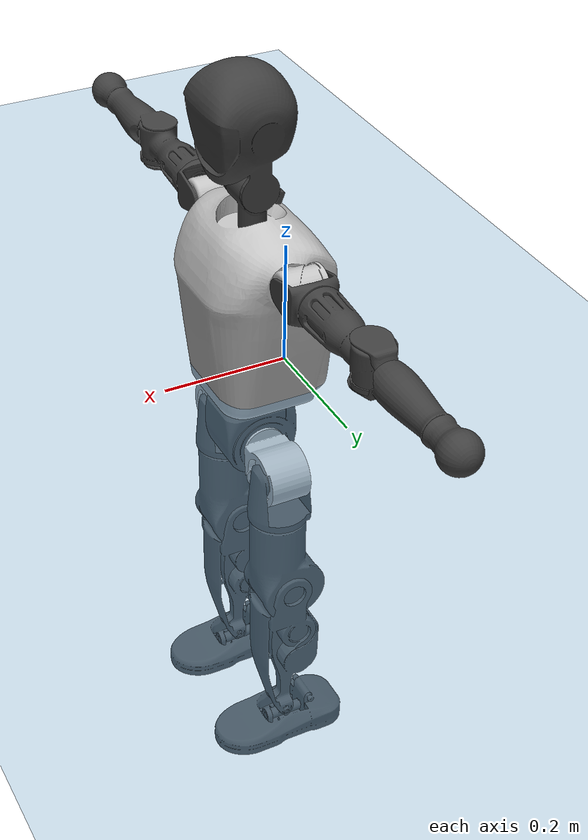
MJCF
<mujoco model="T1">
  <compiler angle="radian" assetdir="assets" balanceinertia="true" inertiafromgeom="false"/>

  <option timestep="0.005" density="1.2" viscosity="2e-05"/>

  <size nkey="1"/>

  <visual>
    <quality shadowsize="8192"/>
    <map shadowclip="0.5"/>
  </visual>

  <default>
    <default class="/">
      <joint armature="0.01" damping="0.01" frictionloss="0.1"/>
      <geom contype="0" conaffinity="0" group="1" solref="-1000 -80"/>
      <site size="0.01 0.005 0.005" group="5"/>
      <general forcelimited="true" biastype="affine" gainprm="25" biasprm="0 -25 -0.6"/>
      <default class="t1">
        <geom rgba="0.25 0.25 0.25 1"/>
        <default class="visual">
          <geom type="mesh" group="2"/>
        </default>
        <default class="collision">
          <geom group="3"/>
        </default>
        <default class="foot">
          <geom size="0.1115 0.05 0.015" type="box" condim="6" group="4" priority="1" solimp="0.015 1 0.015"/>
        </default>
        <default class="reward_collision_sphere">
          <geom group="5" rgba="1 0 0 1"/>
        </default>
      </default>
    </default>
  </default>

  <asset>
    <texture type="skybox" colorspace="auto" name="//unnamed_texture_0" builtin="gradient" rgb1="0.95 0.95 0.95" rgb2="0.95 0.95 0.95" width="100" height="600"/>
    <texture type="2d" colorspace="auto" name="texplane" builtin="checker" rgb1="0.345 0.575 0.748" rgb2="0.345 0.575 0.748" markrgb="1 1 1" width="512" height="512"/>
    <material name="MatPlane" class="/" texture="texplane" texuniform="true" texrepeat="2 2" specular="0.9"/>
    <mesh name="Trunk" class="/" file="Trunk.stl"/>
    <mesh name="H1" class="/" file="H1.stl"/>
    <mesh name="H2" class="/" file="H2.stl"/>
    <mesh name="AL1" class="/" file="AL1.stl"/>
    <mesh name="AL2" class="/" file="AL2.stl"/>
    <mesh name="AL3" class="/" file="AL3.stl"/>
    <mesh name="left_hand_link" class="/" file="left_hand_link.stl"/>
    <mesh name="AR1" class="/" file="AR1.stl"/>
    <mesh name="AR2" class="/" file="AR2.stl"/>
    <mesh name="AR3" class="/" file="AR3.stl"/>
    <mesh name="right_hand_link" class="/" file="right_hand_link.stl"/>
    <mesh name="Waist" class="/" file="Waist.stl"/>
    <mesh name="Hip_Pitch_Left" class="/" file="Hip_Pitch_Left.stl"/>
    <mesh name="Hip_Roll_Left" class="/" file="Hip_Roll_Left.stl"/>
    <mesh name="Hip_Yaw_Left" class="/" file="Hip_Yaw_Left.stl"/>
    <mesh name="Shank_Left" class="/" file="Shank_Left.stl"/>
    <mesh name="Ankle_Cross_Left" class="/" file="Ankle_Cross_Left.stl"/>
    <mesh name="left_foot_link" class="/" file="left_foot_link.stl"/>
    <mesh name="Hip_Pitch_Right" class="/" file="Hip_Pitch_Right.stl"/>
    <mesh name="Hip_Roll_Right" class="/" file="Hip_Roll_Right.stl"/>
    <mesh name="Hip_Yaw_Right" class="/" file="Hip_Yaw_Right.stl"/>
    <mesh name="Shank_Right" class="/" file="Shank_Right.stl"/>
    <mesh name="Ankle_Cross_Right" class="/" file="Ankle_Cross_Right.stl"/>
    <mesh name="right_foot_link" class="/" file="right_foot_link.stl"/>
  </asset>

  <worldbody>
    <geom name="floor" class="/" size="100 100 0.125" type="plane" group="0" material="MatPlane"/>
    <light name="toplight_shadow" class="/" pos="0 0 5" dir="0.0990148 0.0990148 -0.990148" type="directional" ambient="0.04 0.04 0.04" diffuse="0.55 0.55 0.55" specular="0.12 0.12 0.12"/>
    <light name="toplight_fill" class="/" pos="0 0 5" dir="0.0990148 0.0990148 -0.990148" type="directional" castshadow="false" ambient="0.04 0.04 0.04" diffuse="0.3 0.3 0.3" specular="0.08 0.08 0.08"/>
    <body name="trunk" childclass="t1" pos="-3.79115e-05 0.000839645 0.000321373" quat="1 -0.000138543 -2.1258e-06 -4.09452e-05">
      <inertial pos="0.0501335 0.000266581 0.108902" quat="0.999953 0.00119981 -0.00955308 -0.000895002" mass="10.5017" diaginertia="0.0586146 0.0603984 0.066961"/>
      <joint name="//unnamed_joint_0" type="free" armature="0" damping="0" frictionloss="0"/>
      <geom name="//unnamed_geom_1" class="visual" rgba="0.76 0.76 0.76 1" mesh="Trunk"/>
      <geom name="//unnamed_geom_2" class="collision" size="0.0723056 0.0964075 0.144611" pos="0.0543993 0 0.12404" type="box"/>
      <geom name="//unnamed_geom_3" class="reward_collision_sphere" size="0.110869" pos="0.0543993 0 0.103366"/>
      <geom name="//unnamed_geom_4" class="reward_collision_sphere" size="0.0144611" pos="0.0543993 0.0809119 0"/>
      <geom name="//unnamed_geom_5" class="reward_collision_sphere" size="0.0144611" pos="0.0543993 -0.0809119 0"/>
      <geom name="//unnamed_geom_6" class="reward_collision_sphere" size="0.0144611" pos="0.0543993 0.101854 0.18606"/>
      <geom name="//unnamed_geom_7" class="reward_collision_sphere" size="0.0144611" pos="0.0543993 -0.101854 0.18606"/>
      <site name="imu" pos="0.000610131 0.000238918 -0.000231211" size="0.00964075"/>
      <camera name="track" pos="0 -1.90381 0" quat="0.707107 0.707107 0 0" mode="trackcom"/>
      <camera name="ego_camera" pos="0.110612 0 0.434139" quat="-0.5 -0.5 0.5 0.5"/>
      <body name="H1" pos="0.0552014 -0.000169373 0.249372" quat="1 -6.84617e-06 1.20864e-07 -3.77052e-05">
        <inertial pos="-0.00133531 -0.00196101 0.0593106" quat="0.76303 -0.013767 0.0019373 0.646213" mass="0.401306" diaginertia="0.000149272 0.000173565 0.000177804"/>
        <joint name="AAHead_yaw" pos="0 0 0" axis="-0.00120356 0.000162487 0.999999" range="-1.56764 1.57081" armature="0.0103813" damping="0.0126796" frictionloss="0.102844"/>
        <geom name="//unnamed_geom_8" class="visual" mesh="H1"/>
        <body name="H2" pos="0.000555385 -0.00243369 0.0644368" quat="1 -0.000486148 0.000100893 -3.16599e-05">
          <inertial pos="0.00689518 -0.000373939 0.0999991" quat="0.988914 0.102901 -0.0746458 -0.0767375" mass="0.560254" diaginertia="0.00125936 0.00147171 0.00204381"/>
          <joint name="Head_pitch" pos="0 0 0" axis="0.00398158 -0.999991 0.00172895" stiffness="3.43397e-05" range="-1.21407 0.356721" armature="0.00937155" damping="0" frictionloss="0.0987848"/>
          <geom name="//unnamed_geom_9" class="visual" mesh="H2"/>
          <geom name="//unnamed_geom_10" class="collision" size="0.077126" pos="0.00906656 0 0.113703"/>
          <geom name="//unnamed_geom_11" class="reward_collision_sphere" size="0.0867667" pos="0.0181331 0 0.103366"/>
        </body>
      </body>
      <body name="AL1" pos="0.0530977 0.101849 0.225021" quat="1 -0.000461138 -0.000336488 -0.000344689">
        <inertial pos="-0.000541166 0.0429545 -0.000209972" quat="0.504237 0.49583 -0.504187 0.495674" mass="0.479826" diaginertia="0.000845796 0.000997844 0.000344529"/>
        <joint name="Left_Shoulder_Pitch" pos="0 0 0" axis="-0.00219582 0.999991 0.00354745" stiffness="0.00188381" range="-3.29431 1.25644" armature="0.00962914" damping="0" frictionloss="0.0926074"/>
        <geom name="//unnamed_geom_12" class="visual" rgba="0.76 0.76 0.76 1" mesh="AL1"/>
        <body name="AL2" pos="-1.38651e-05 0.0441597 -0.000612672" quat="1 -1.16593e-05 -0.000107896 0.000106921">
          <inertial pos="0.00433939 0.0374801 0.000557864" quat="0.488709 0.512624 -0.487699 0.510422" mass="0.141696" diaginertia="0.00024365 0.00026821 0.000209111"/>
          <joint name="Left_Shoulder_Roll" pos="0 0 0" axis="-0.999998 -0.00195364 0.000756837" range="-1.5898 1.73774" armature="0.0104537" damping="0.00717945" frictionloss="0.0958963"/>
          <geom name="//unnamed_geom_13" class="visual" mesh="AL2"/>
          <body name="AL3" pos="-6.33147e-05 0.0583042 -0.000451812" quat="1 -3.94816e-05 -4.88969e-05 0.000288143">
            <inertial pos="0.000761521 0.0796341 -0.00110145" quat="0.704801 0.709401 -0.000154195 -0.00241177" mass="0.891878" diaginertia="0.00792336 0.00993356 0.000724856"/>
            <joint name="Left_Elbow_Pitch" pos="0 0 0" axis="0.00475509 -0.999988 -0.00115323" stiffness="0.00200693" range="-2.31036 2.28959" armature="0.0107194" damping="0.00831326" frictionloss="0.0973301"/>
            <geom name="//unnamed_geom_14" class="visual" mesh="AL3"/>
            <geom name="//unnamed_geom_15" class="collision" size="0.0289222 0.0723056" pos="0 0.0475952 0" quat="0.707105 0.707108 0 0" type="cylinder"/>
            <geom name="//unnamed_geom_16" class="reward_collision_sphere" size="0.0347067"/>
            <body name="left_hand_link" pos="0.000929053 0.140423 0.000807365" quat="1 0.000628494 -0.000126345 -0.000541358">
              <inertial pos="-0.00179849 0.103395 0.000118839" quat="0.706933 0.707279 -3.42743e-05 0.00103231" mass="0.294504" diaginertia="0.00493191 0.00628786 0.000258236"/>
              <joint name="Left_Elbow_Yaw" pos="0 0 0" axis="0.00098909 0.00281105 0.999996" stiffness="0.000486942" range="-2.44384 -0.0355829" armature="0.00943232" damping="0.00826141" frictionloss="0.0947973"/>
              <geom name="//unnamed_geom_17" class="visual" mesh="left_hand_link"/>
              <geom name="//unnamed_geom_18" class="collision" size="0.0289222 0.0843566" pos="0 0.123748 0" quat="0.707105 0.707108 0 0" type="cylinder"/>
              <geom name="//unnamed_geom_19" class="reward_collision_sphere" size="0.0482037"/>
              <geom name="//unnamed_geom_20" class="reward_collision_sphere" size="0.0337426" pos="0 0.104709 0"/>
              <geom name="//unnamed_geom_21" class="reward_collision_sphere" size="0.0337426" pos="0 0.204659 0"/>
            </body>
          </body>
        </body>
      </body>
      <body name="AR1" pos="0.0506953 -0.101416 0.225936" quat="1 6.05538e-05 -0.000112174 0.000121731">
        <inertial pos="-0.000670591 -0.0452418 3.91238e-05" quat="0.503186 0.497602 -0.503542 0.495622" mass="0.464533" diaginertia="0.00083683 0.000996542 0.000336991"/>
        <joint name="Right_Shoulder_Pitch" pos="0 0 0" axis="-0.00656263 -0.999965 -0.00509272" range="-1.23012 3.32555" armature="0.0101356" damping="0.0130745" frictionloss="0.100834"/>
        <geom name="//unnamed_geom_22" class="visual" rgba="0.76 0.76 0.76 1" mesh="AR1"/>
        <body name="AR2" pos="0.00126839 -0.043807 0.000538109" quat="1 0.000387033 0.000600366 0.00045876">
          <inertial pos="0.00383193 -0.035794 0.000913789" quat="0.5104 0.49071 -0.513624 0.48465" mass="0.140692" diaginertia="0.000245503 0.00027437 0.000208816"/>
          <joint name="Right_Shoulder_Roll" pos="0 0 0" axis="-0.999974 0.00266613 -0.00668205" range="-1.75976 1.55185" armature="0.00962321" damping="0.00335623" frictionloss="0.106683"/>
          <geom name="//unnamed_geom_23" class="visual" mesh="AR2"/>
          <body name="AR3" pos="-0.000819199 -0.058912 -0.00231207" quat="1 2.80494e-05 -1.46906e-05 4.25916e-05">
            <inertial pos="-0.000189761 -0.0827447 0.00100807" quat="0.70807 0.706121 0.00236757 0.00491183" mass="0.915204" diaginertia="0.0079049 0.0100652 0.000744636"/>
            <joint name="Right_Elbow_Pitch" pos="0 0 0" axis="0.00174115 0.999987 0.00488136" range="-2.29503 2.2794" armature="0.0088956" damping="0.0102852" frictionloss="0.095213"/>
            <geom name="//unnamed_geom_24" class="visual" mesh="AR3"/>
            <geom name="//unnamed_geom_25" class="collision" size="0.0289222 0.0723056" pos="0 -0.0475952 0" quat="0.707105 0.707108 0 0" type="cylinder"/>
            <geom name="//unnamed_geom_26" class="reward_collision_sphere" size="0.0347067"/>
            <body name="right_hand_link" pos="-0.000337208 -0.139835 1.62707e-05" quat="1 -8.86373e-05 -0.00012456 -0.000176978">
              <inertial pos="-6.20863e-05 -0.103185 0.00261513" quat="0.706435 0.707778 0.00012601 0.000326867" mass="0.295512" diaginertia="0.00502321 0.00645428 0.000256638"/>
              <joint name="Right_Elbow_Yaw" pos="0 0 0" axis="0.00328924 0.00262231 0.999991" stiffness="0.00097688" range="-0.00201545 2.43275" armature="0.0102426" damping="0" frictionloss="0.0975117"/>
              <geom name="//unnamed_geom_27" class="visual" mesh="right_hand_link"/>
              <geom name="//unnamed_geom_28" class="collision" size="0.0289222 0.0843566" pos="0 -0.123748 0" quat="0.707105 0.707108 0 0" type="cylinder"/>
              <geom name="//unnamed_geom_29" class="reward_collision_sphere" size="0.0482037"/>
              <geom name="//unnamed_geom_30" class="reward_collision_sphere" size="0.0337426" pos="0 -0.104709 0"/>
              <geom name="//unnamed_geom_31" class="reward_collision_sphere" size="0.0337426" pos="0 -0.204659 0"/>
            </body>
          </body>
        </body>
      </body>
      <body name="Waist" pos="0.0573282 -0.00205168 -0.117241" quat="1 0.000134062 -0.000434448 8.93626e-05">
        <inertial pos="0.000902469 -0.000165342 0.00787735" quat="0.98333 0.00330925 -0.181785 -0.00211572" mass="2.25019" diaginertia="0.00322078 0.00401261 0.00543919"/>
        <joint name="Waist" pos="0 0 0" axis="0.00691275 -0.000902356 0.999976" range="-1.56678 1.54543" armature="0.00960497" damping="0.0100351" frictionloss="0.101661"/>
        <geom name="//unnamed_geom_32" class="visual" mesh="Waist"/>
        <body name="Hip_Pitch_Left" pos="0.00169798 0.100363 -0.000189685" quat="1 -0.000383204 0.000447338 0.000274449">
          <inertial pos="0.000625414 -0.00653818 -0.0190129" quat="0.975054 0.221443 0.0152473 0.00107239" mass="0.90831" diaginertia="0.00111051 0.00116754 0.00146752"/>
          <joint name="Left_Hip_Pitch" pos="0 0 0" axis="-0.00309721 0.999917 0.0124884" range="-1.79361 1.60673" armature="0.00932208" damping="0.00383922" frictionloss="0.0976243"/>
          <geom name="//unnamed_geom_33" class="visual" rgba="0.76 0.76 0.76 1" mesh="Hip_Pitch_Left"/>
          <body name="Hip_Roll_Left" pos="0.00117462 0.00206829 -0.0203767" quat="0.999999 -0.00089818 0.000855037 1.92003e-05">
            <inertial pos="0.000493221 -0.000141759 -0.0553349" quat="0.706556 -0.00720418 -0.00213969 0.707617" mass="0.336927" diaginertia="0.00106006 0.00115778 0.000593159"/>
            <joint name="Left_Hip_Roll" pos="0 0 0" axis="-0.999976 -0.0066875 0.00179329" range="-1.58841 0.210208" armature="0.0100776" damping="0.00851861" frictionloss="0.0960456"/>
            <geom name="//unnamed_geom_34" class="visual" mesh="Hip_Roll_Left"/>
            <geom name="//unnamed_geom_35" class="reward_collision_sphere" size="0.0530241"/>
            <body name="Hip_Yaw_Left" pos="-0.000119429 6.5881e-05 -0.0841827" quat="1 -0.00021125 6.67871e-05 0.000128732">
              <inertial pos="-0.00583253 -0.000863984 -0.0920813" quat="0.692344 -0.0380335 -0.0271809 0.720052" mass="1.93091" diaginertia="0.0156219 0.0193347 0.0030034"/>
              <joint name="Left_Hip_Yaw" pos="0 0 0" axis="0.000409726 -0.000307371 -1" stiffness="0.00062326" range="-1.01372 1.01097" armature="0.00963907" damping="0.00476878" frictionloss="0.0986737"/>
              <geom name="//unnamed_geom_36" class="visual" mesh="Hip_Yaw_Left"/>
              <geom name="//unnamed_geom_37" class="collision" size="0.0482037 0.077126" type="cylinder"/>
              <body name="Shank_Left" pos="-0.0109191 -0.000906812 -0.138078" quat="1 -0.000157477 0.000267364 0.00015851">
                <inertial pos="-0.00451454 2.24075e-05 -0.129033" quat="0.997675 -0.00158199 -0.0253416 0.0632395" mass="1.52829" diaginertia="0.0211241 0.026942 0.00213952"/>
                <joint name="Left_Knee_Pitch" pos="0 0 0" axis="-0.00449003 0.999986 0.00269805" range="-0.0184293 2.35675" armature="0.0102848" damping="0.00661126" frictionloss="0.0981873"/>
                <geom name="//unnamed_geom_38" class="visual" mesh="Shank_Left"/>
                <geom name="//unnamed_geom_39" class="collision" size="0.0482037 0.0723056" pos="0 0 -0.12404" type="cylinder"/>
                <geom name="//unnamed_geom_40" class="reward_collision_sphere" size="0.0626649"/>
                <body name="Ankle_Cross_Left" pos="-0.000260633 0.000312197 -0.290444" quat="1 0.000284899 0.00021623 0.000647713">
                  <inertial pos="-0.00228135 -0.0018252 -0.00879223" quat="0.441909 0.551571 0.552046 0.442415" mass="0.0654623" diaginertia="1.78659e-05 2.0349e-05 1.34153e-05"/>
                  <joint name="Left_Ankle_Pitch" pos="0 0 0" axis="0.000261426 1 0.000892634" stiffness="0.00257907" range="-0.864244 0.333818" armature="0.0102181" damping="0.00840749" frictionloss="0.0986389"/>
                  <geom name="//unnamed_geom_41" class="visual" mesh="Ankle_Cross_Left"/>
                  <body name="left_foot_link" pos="-0.00107457 -0.00172103 -0.0120603" quat="1 -6.94243e-05 -0.000103326 -8.46962e-05">
                    <inertial pos="0.00103015 -0.000393535 -0.00732286" quat="-0.00130129 0.620415 -0.0013825 0.784271" mass="0.619988" diaginertia="0.00166174 0.00187737 0.00262358"/>
                    <joint name="Left_Ankle_Roll" pos="0 0 0" axis="-0.999998 0.00175761 -0.00132176" range="-0.435018 0.440142" armature="0.00898291" damping="0.0124488" frictionloss="0.0978143"/>
                    <geom name="//unnamed_geom_42" class="visual" mesh="left_foot_link"/>
                    <geom name="left_foot" class="foot" size="0.112232 0.0485939 0.0141737" pos="0.00906656 0 -0.015505"/>
                    <geom name="//unnamed_geom_44" class="reward_collision_sphere" size="0.0501319" pos="0.00906656 0 -0.015505"/>
                    <geom name="//unnamed_geom_45" class="reward_collision_sphere" size="0.0289222" pos="0.0861323 -0.0218938 -0.015505"/>
                    <geom name="//unnamed_geom_46" class="reward_collision_sphere" size="0.0289222" pos="-0.0634659 -0.0218938 -0.015505"/>
                    <site name="left_foot" class="foot" pos="0.00906656 0 -0.015505" size="0.00964075"/>
                  </body>
                </body>
              </body>
            </body>
          </body>
        </body>
        <body name="Hip_Pitch_Right" pos="-0.00125173 -0.102074 0.000110081" quat="0.999999 0.000867902 0.000971155 -9.93204e-06">
          <inertial pos="0.000143927 0.00492485 -0.0186132" quat="0.972879 -0.230758 0.015315 -0.00467522" mass="0.89218" diaginertia="0.0010844 0.00112245 0.00146045"/>
          <joint name="Right_Hip_Pitch" pos="0 0 0" axis="0.00261443 -0.999996 -0.000740492" range="-1.57394 1.80685" armature="0.0100783" damping="0.0109398" frictionloss="0.105276"/>
          <geom name="//unnamed_geom_47" class="visual" rgba="0.76 0.76 0.76 1" mesh="Hip_Pitch_Right"/>
          <body name="Hip_Roll_Right" pos="-0.000393586 0.0015303 -0.0192335" quat="1 -0.000239627 6.57713e-05 -0.000113488">
            <inertial pos="-0.00036098 0.00182483 -0.0572765" quat="0.709187 -0.00984886 -0.006058 0.704925" mass="0.338994" diaginertia="0.00105457 0.00117167 0.000601138"/>
            <joint name="Right_Hip_Roll" pos="0 0 0" axis="-0.999999 0.00091549 -0.00071197" range="-0.207352 1.56947" armature="0.00918237" damping="0.0106802" frictionloss="0.0989011"/>
            <geom name="//unnamed_geom_48" class="visual" mesh="Hip_Roll_Right"/>
            <geom name="//unnamed_geom_49" class="reward_collision_sphere" size="0.0530241"/>
            <body name="Hip_Yaw_Right" pos="-0.000155988 1.48596e-05 -0.0835727" quat="1 4.90771e-05 0.000157986 0.000372049">
              <inertial pos="-0.00660166 -0.000131442 -0.0927699" quat="0.71412 -0.0312954 -0.0337079 0.69851" mass="1.90611" diaginertia="0.0157981 0.0196094 0.00309631"/>
              <joint name="Right_Hip_Yaw" pos="0 0 0" axis="0.00253132 0.00230582 -0.999994" stiffness="0.00299663" range="-0.999274 0.985607" armature="0.00858883" damping="0.0125388" frictionloss="0.104093"/>
              <geom name="//unnamed_geom_50" class="visual" mesh="Hip_Yaw_Right"/>
              <geom name="//unnamed_geom_51" class="collision" size="0.0482037 0.077126" type="cylinder"/>
              <body name="Shank_Right" pos="-0.0138975 0.00111499 -0.138557" quat="1 -0.000117343 -0.000712011 0.000298426">
                <inertial pos="-0.00561882 0.000259588 -0.124993" quat="0.999258 0.000205252 -0.023886 -0.0302164" mass="1.59178" diaginertia="0.0216927 0.0272009 0.00238318"/>
                <joint name="Right_Knee_Pitch" pos="0 0 0" axis="0.00524502 -0.999958 0.00749754" range="-2.32313 -0.0222257" armature="0.00949246" damping="0.00879612" frictionloss="0.101163"/>
                <geom name="//unnamed_geom_52" class="visual" mesh="Shank_Right"/>
                <geom name="//unnamed_geom_53" class="collision" size="0.0482037 0.0723056" pos="0 0 -0.12404" type="cylinder"/>
                <geom name="//unnamed_geom_54" class="reward_collision_sphere" size="0.0626649"/>
                <body name="Ankle_Cross_Right" pos="-0.000275189 -0.00178778 -0.289567" quat="0.999999 0.000410039 -0.000864649 0.000489442">
                  <inertial pos="-0.0023832 0.00104551 -0.00780038" quat="0.445849 0.549841 0.549177 0.444182" mass="0.0654305" diaginertia="1.76431e-05 2.00229e-05 1.32269e-05"/>
                  <joint name="Right_Ankle_Pitch" pos="0 0 0" axis="0.00461037 -0.999986 0.00274764" stiffness="0.00241632" range="-0.369933 0.874761" armature="0.00974992" damping="0.00989915" frictionloss="0.0942265"/>
                  <geom name="//unnamed_geom_55" class="visual" mesh="Ankle_Cross_Right"/>
                  <body name="right_foot_link" pos="-2.61128e-05 -0.00241485 -0.0115239" quat="1 -2.33248e-05 2.84476e-05 -4.87833e-05">
                    <inertial pos="-0.000523937 -0.000978261 -0.0102592" quat="0.000577586 0.619453 -0.000778695 0.785033" mass="0.62027" diaginertia="0.00166136 0.00186452 0.00258108"/>
                    <joint name="Right_Ankle_Roll" pos="0 0 0" axis="-1 -0.000242346 -0.000833443" range="-0.395083 0.43622" armature="0.0101384" damping="0.00866478" frictionloss="0.0959253"/>
                    <geom name="//unnamed_geom_56" class="visual" mesh="right_foot_link"/>
                    <geom name="right_foot" class="foot" size="0.0952166 0.0483697 0.0141777" pos="0.00906656 0 -0.015505"/>
                    <geom name="//unnamed_geom_58" class="reward_collision_sphere" size="0.038563"/>
                    <geom name="//unnamed_geom_59" class="reward_collision_sphere" size="0.0289222" pos="0.00906656 0 -0.015505"/>
                    <geom name="//unnamed_geom_60" class="reward_collision_sphere" size="0.0289222" pos="0.0861323 0.0218938 -0.015505"/>
                    <geom name="//unnamed_geom_61" class="reward_collision_sphere" size="0.0289222" pos="-0.0634659 0.0218938 -0.015505"/>
                    <site name="right_foot" class="foot" pos="0.00906656 0 -0.015505" size="0.00964075"/>
                  </body>
                </body>
              </body>
            </body>
          </body>
        </body>
      </body>
    </body>
  </worldbody>

  <contact>
    <pair class="/" geom1="floor" geom2="left_foot" name="//unnamed_contact_0"/>
    <pair class="/" geom1="floor" geom2="right_foot" name="//unnamed_contact_1"/>
  </contact>

  <actuator>
    <general name="AAHead_yaw" class="/" joint="AAHead_yaw" forcerange="-6.89809 6.89809" gainprm="24.2718" biasprm="0 -24.2718 -0.582007"/>
    <general name="Head_pitch" class="/" joint="Head_pitch" forcerange="-6.74426 6.74426" gainprm="24.2718" biasprm="0 -24.2718 -0.582007"/>
    <general name="Left_Shoulder_Pitch" class="/" joint="Left_Shoulder_Pitch" forcerange="-17.1317 17.1317" gainprm="24.2718" biasprm="0 -24.2718 -0.582007"/>
    <general name="Left_Shoulder_Roll" class="/" joint="Left_Shoulder_Roll" forcerange="-17.8926 17.8926" gainprm="24.2718" biasprm="0 -24.2718 -0.582007"/>
    <general name="Left_Elbow_Pitch" class="/" joint="Left_Elbow_Pitch" forcerange="-17.1273 17.1273" gainprm="24.2718" biasprm="0 -24.2718 -0.582007"/>
    <general name="Left_Elbow_Yaw" class="/" joint="Left_Elbow_Yaw" forcerange="-17.2477 17.2477" gainprm="24.2718" biasprm="0 -24.2718 -0.582007"/>
    <general name="Right_Shoulder_Pitch" class="/" joint="Right_Shoulder_Pitch" forcerange="-17.5254 17.5254" gainprm="24.2718" biasprm="0 -24.2718 -0.582007"/>
    <general name="Right_Shoulder_Roll" class="/" joint="Right_Shoulder_Roll" forcerange="-17.9375 17.9375" gainprm="24.2718" biasprm="0 -24.2718 -0.582007"/>
    <general name="Right_Elbow_Pitch" class="/" joint="Right_Elbow_Pitch" forcerange="-17.1213 17.1213" gainprm="24.2718" biasprm="0 -24.2718 -0.582007"/>
    <general name="Right_Elbow_Yaw" class="/" joint="Right_Elbow_Yaw" forcerange="-17.5443 17.5443" gainprm="24.2718" biasprm="0 -24.2718 -0.582007"/>
    <general name="Waist" class="/" joint="Waist" forcerange="-27.9997 27.9997" gainprm="24.2718" biasprm="0 -24.2718 -0.582007"/>
    <general name="Left_Hip_Pitch" class="/" joint="Left_Hip_Pitch" forcerange="-44.6322 44.6322" gainprm="24.2718" biasprm="0 -24.2718 -0.582007"/>
    <general name="Left_Hip_Roll" class="/" joint="Left_Hip_Roll" forcerange="-29.2368 29.2368" gainprm="24.2718" biasprm="0 -24.2718 -0.582007"/>
    <general name="Left_Hip_Yaw" class="/" joint="Left_Hip_Yaw" forcerange="-28.9606 28.9606" gainprm="24.2718" biasprm="0 -24.2718 -0.582007"/>
    <general name="Left_Knee_Pitch" class="/" joint="Left_Knee_Pitch" forcerange="-55.5235 55.5235" gainprm="24.2718" biasprm="0 -24.2718 -0.582007"/>
    <general name="Left_Ankle_Pitch" class="/" joint="Left_Ankle_Pitch" forcerange="-20.7235 20.7235" gainprm="24.2718" biasprm="0 -24.2718 -0.582007"/>
    <general name="Left_Ankle_Roll" class="/" joint="Left_Ankle_Roll" forcerange="-13.2856 13.2856" gainprm="24.2718" biasprm="0 -24.2718 -0.582007"/>
    <general name="Right_Hip_Pitch" class="/" joint="Right_Hip_Pitch" forcerange="-43.3126 43.3126" gainprm="24.2718" biasprm="0 -24.2718 -0.582007"/>
    <general name="Right_Hip_Roll" class="/" joint="Right_Hip_Roll" forcerange="-28.0632 28.0632" gainprm="24.2718" biasprm="0 -24.2718 -0.582007"/>
    <general name="Right_Hip_Yaw" class="/" joint="Right_Hip_Yaw" forcerange="-30.7661 30.7661" gainprm="24.2718" biasprm="0 -24.2718 -0.582007"/>
    <general name="Right_Knee_Pitch" class="/" joint="Right_Knee_Pitch" forcerange="-56.5152 56.5152" gainprm="24.2718" biasprm="0 -24.2718 -0.582007"/>
    <general name="Right_Ankle_Pitch" class="/" joint="Right_Ankle_Pitch" forcerange="-19.1538 19.1538" gainprm="24.2718" biasprm="0 -24.2718 -0.582007"/>
    <general name="Right_Ankle_Roll" class="/" joint="Right_Ankle_Roll" forcerange="-14.4028 14.4028" gainprm="24.2718" biasprm="0 -24.2718 -0.582007"/>
  </actuator>

  <sensor>
    <gyro site="imu" name="imu_angular_velocity"/>
    <velocimeter site="imu" name="imu_linear_velocity"/>
    <framelinvel objtype="site" objname="left_foot" name="left_foot_global_linear_velocity"/>
    <framelinvel objtype="site" objname="right_foot" name="right_foot_global_linear_velocity"/>
  </sensor>

  <keyframe>
    <key name="home" qpos="0 0 0.6385 1 0 0 0 0 0 0 1.4 0 -0.4 0 -1.4 0 0.4 0 -0.4 0 0 0.8 -0.4 0 0.4 0 0 -0.8 0.4 0"/>
  </keyframe>
</mujoco>
